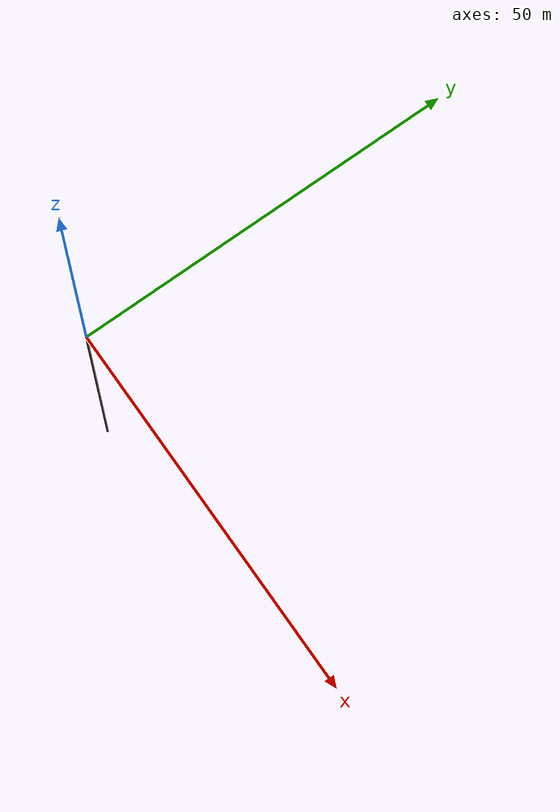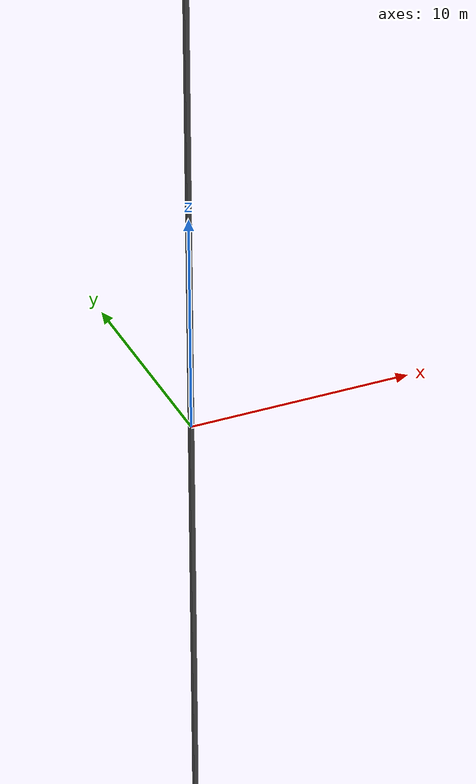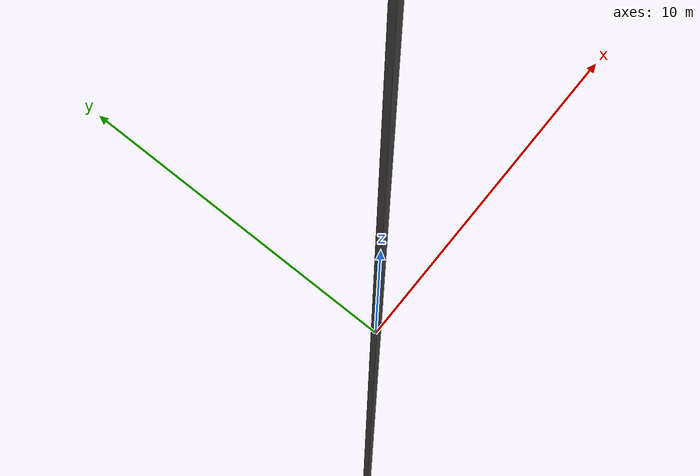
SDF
<?xml version="1.0" ?>
<sdf version="1.5">
  <model name="mbzirc_roof_100">
    <static>true</static>
    <link name="link">
	<pose frame=''>0.0 0 0.25 0 0.0 0</pose>
      <collision name="collision">
        <geometry>
          <box>
            <size>0.2 0.2 100</size>
          </box>
        </geometry>
      </collision>
      <visual name="visual">
        <cast_shadows>false</cast_shadows>
        <geometry>
          <box>
            <size>0.2 0.2 100</size>
          </box>
        </geometry>
        <material>
          <script>
            <name>Gazebo/DarkGrey</name>
            <uri>file://media/materials/scripts/gazebo.material</uri>
          </script>
        </material>
      </visual>
    </link>
  </model>
</sdf>
